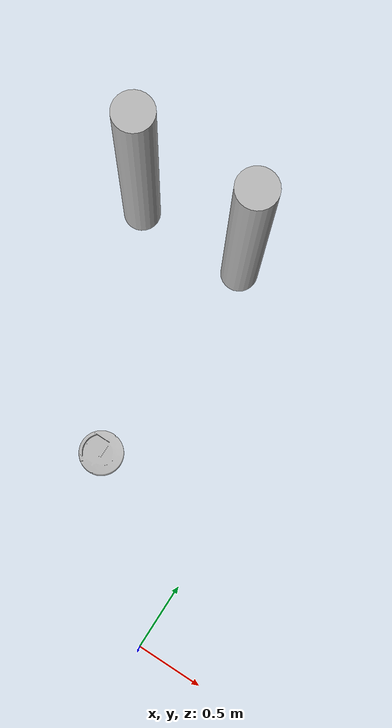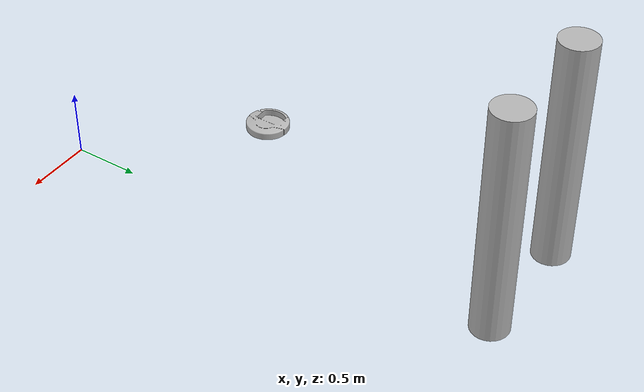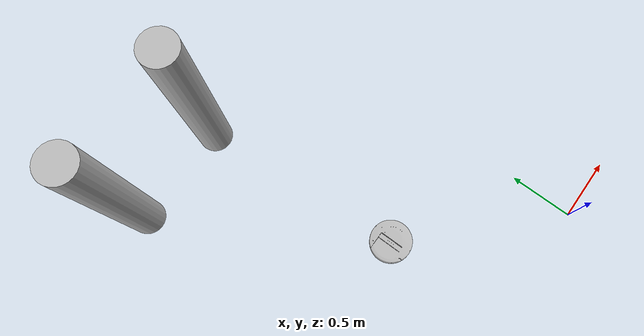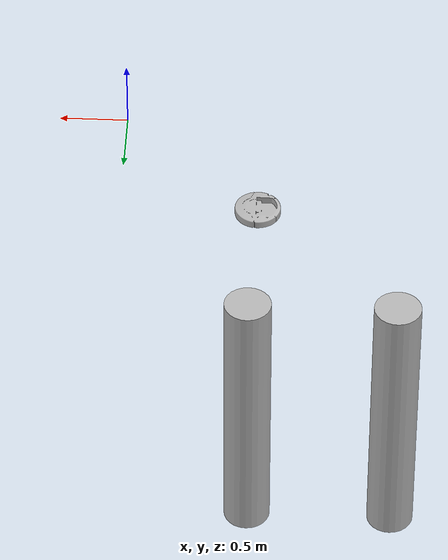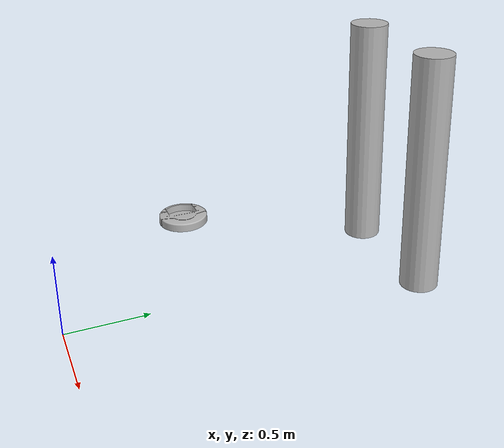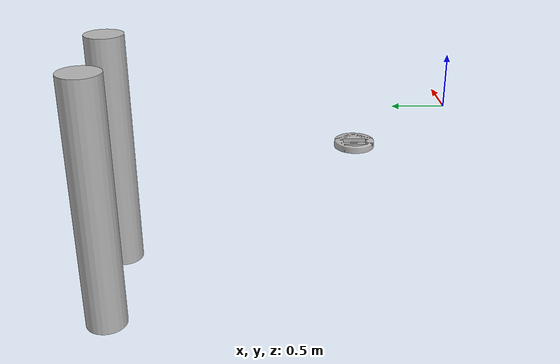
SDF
<sdf version="1.4">
 <world name="default">
  <model name="create_5">
   <link name="base">
    <inertial>
     <pose>0.001453 -0.000453 0.029787 0 -0 0</pose>
     <inertia>
      <ixx>0.05864</ixx>
      <ixy>0.000124</ixy>
      <ixz>0.000615</ixz>
      <iyy>0.058786</iyy>
      <iyz>1.4e-05</iyz>
      <izz>1.53244</izz>
     </inertia>
     <mass>2.234</mass>
    </inertial>
    <collision name="base_collision">
     <pose>0 0 0.0478 0 -0 0</pose>
     <geometry><cylinder><radius>0.016495</radius><length>0.061163</length></cylinder></geometry>
    </collision>
    <visual name="base_visual">
     <pose>0 0 0.0478 0 -0 0</pose>
     <geometry><mesh><uri>model://create/meshes/create_body.dae</uri></mesh></geometry>
    </visual>
    <collision name="front_wheel_collision">
     <pose>0.13 0 0.017 -2.8814e-12 1.5707 1.5707</pose>
     <geometry><sphere><radius>0.018</radius></sphere></geometry>
     <surface>
      <friction><ode><mu>0</mu><mu2>0</mu2><fdir1>0 0 0</fdir1><slip1>0</slip1><slip2>0</slip2></ode></friction>
     </surface>
    </collision>
    <visual name="front_wheel_visual">
     <pose>0.13 0 0.017 -2.8814e-12 1.5707 1.5707</pose>
     <geometry><sphere><radius>0.009</radius></sphere></geometry>
    </visual>
    <collision name="rear_wheel_collision">
     <pose>-0.13 0 0.017 -2.8814e-12 1.5707 1.5707</pose>
     <geometry><sphere><radius>0.015</radius></sphere></geometry>
     <surface>
      <friction><ode><mu>0</mu><mu2>0</mu2><fdir1>0 0 0</fdir1><slip1>0</slip1><slip2>0</slip2></ode></friction>
     </surface>
    </collision>
    <visual name="rear_wheel_visual">
     <pose>-0.13 0 0.017 -2.8814e-12 1.5707 1.5707</pose>
     <geometry><sphere><radius>0.0075</radius></sphere></geometry>
    </visual>
    <sensor name="left_cliff_sensor" type="ray">
     <pose>0.07 0.14 0.027 0 1.57079 0</pose>
     <ray>
      <scan>
       <horizontal>
        <samples>1</samples>
        <resolution>1</resolution>
        <min_angle>0</min_angle>
        <max_angle>0</max_angle>
       </horizontal>
      </scan>
      <range><min>0.01</min><max>0.04</max><resolution>0.1</resolution></range>
     </ray>
    </sensor>
    <sensor name="leftfront_cliff_sensor" type="ray">
     <pose>0.15 0.04 0.027 0 1.57079 0</pose>
     <ray>
      <scan>
       <horizontal>
        <samples>1</samples>
        <resolution>1</resolution>
        <min_angle>0</min_angle>
        <max_angle>0</max_angle>
       </horizontal>
      </scan>
      <range><min>0.01</min><max>0.04</max><resolution>0.1</resolution></range>
     </ray>
    </sensor>
    <sensor name="right_cliff_sensor" type="ray">
     <pose>0.07 -0.14 0.027 0 1.57079 0</pose>
     <ray>
      <scan>
       <horizontal>
        <samples>1</samples>
        <resolution>1</resolution>
        <min_angle>0</min_angle>
        <max_angle>0</max_angle>
       </horizontal>
      </scan>
      <range><min>0.01</min><max>0.04</max><resolution>0.1</resolution></range>
     </ray>
    </sensor>
    <sensor name="rightfront_cliff_sensor" type="ray">
     <pose>0.15 -0.04 0.027 0 1.57079 0</pose>
     <ray>
      <scan>
       <horizontal>
        <samples>1</samples>
        <resolution>1</resolution>
        <min_angle>0</min_angle>
        <max_angle>0</max_angle>
       </horizontal>
      </scan>
      <range><min>0.01</min><max>0.04</max><resolution>0.1</resolution></range>
     </ray>
    </sensor>
    <sensor name="wall_sensor" type="ray">
     <pose>0.09 -0.12 0.059 0 0 -1</pose>
     <ray>
      <scan>
       <horizontal>
        <samples>1</samples>
        <resolution>1</resolution>
        <min_angle>0</min_angle>
        <max_angle>0</max_angle>
       </horizontal>
      </scan>
      <range><min>0.016</min><max>0.04</max><resolution>0.1</resolution></range>
     </ray>
    </sensor>
    <velocity_decay><linear>0</linear><angular>0</angular></velocity_decay>
   </link>
   <link name="left_wheel">
    <pose>0 0.13 0.032 0 -0 0</pose>
    <inertial>
     <inertia><ixx>0.001</ixx><ixy>0</ixy><ixz>0</ixz><iyy>0.001</iyy><iyz>0</iyz><izz>0.001</izz></inertia>
     <mass>0.01</mass>
    </inertial>
    <collision name="collision">
     <pose>0 0 0 -2.8814e-12 1.5707 1.5707</pose>
     <geometry><cylinder><radius>0.033</radius><length>0.023</length></cylinder></geometry>
     <surface>
      <friction><ode><mu>10</mu><mu2>10</mu2><fdir1>0 0 0</fdir1><slip1>0</slip1><slip2>0</slip2></ode></friction>
     </surface>
    </collision>
    <visual name="visual">
     <pose>0 0 0 -2.8814e-12 1.5707 1.5707</pose>
     <geometry><cylinder><radius>0.033</radius><length>0.023</length></cylinder></geometry>
    </visual>
    <velocity_decay><linear>0</linear><angular>0</angular></velocity_decay>
   </link>
   <link name="right_wheel">
    <pose>0 -0.13 0.032 0 -0 0</pose>
    <inertial>
     <inertia><ixx>0.001</ixx><ixy>0</ixy><ixz>0</ixz><iyy>0.001</iyy><iyz>0</iyz><izz>0.001</izz></inertia>
     <mass>0.01</mass>
    </inertial>
    <collision name="collision">
     <pose>0 0 0 -2.8814e-12 1.5707 1.5707</pose>
     <geometry><cylinder><radius>0.033</radius><length>0.023</length></cylinder></geometry>
     <surface>
      <friction><ode><mu>10</mu><mu2>10</mu2><fdir1>0 0 0</fdir1><slip1>0</slip1><slip2>0</slip2></ode></friction>
     </surface>
    </collision>
    <visual name="visual">
     <pose>0 0 0 -2.8814e-12 1.5707 1.5707</pose>
     <geometry><cylinder><radius>0.033</radius><length>0.023</length></cylinder></geometry>
    </visual>
    <velocity_decay><linear>0</linear><angular>0</angular></velocity_decay>
   </link>
   <joint name="left_wheel" type="revolute">
    <parent>base</parent>
    <child>left_wheel</child>
    <axis><xyz>0 1 0</xyz><limit><lower>-1e+16</lower><upper>1e+16</upper></limit></axis>
   </joint>
   <joint name="right_wheel" type="revolute">
    <parent>base</parent>
    <child>right_wheel</child>
    <axis><xyz>0 1 0</xyz><limit><lower>-1e+16</lower><upper>1e+16</upper></limit></axis>
   </joint>
   <pose>-1 1 0 0 -0 0</pose>
   <static>0</static>
  </model>
  <model name="iarc_obstacle_robot">
   <link name="base">
    <inertial>
     <mass>5</mass>
     <inertia><ixx>1</ixx><ixy>0</ixy><ixz>0</ixz><iyy>1</iyy><iyz>0</iyz><izz>1</izz></inertia>
    </inertial>
    <collision name="collision">
     <geometry><cylinder><radius>0.16</radius><length>2</length></cylinder></geometry>
    </collision>
    <visual name="visual">
     <geometry><cylinder><radius>0.16</radius><length>2</length></cylinder></geometry>
    </visual>
    <velocity_decay><linear>0</linear><angular>0</angular></velocity_decay>
   </link>
   <pose>-1 3 0 0 -0 0</pose>
   <static>0</static>
  </model>
  <model name="iarc_obstacle_robot_2">
   <link name="base">
    <inertial>
     <mass>5</mass>
     <inertia><ixx>1</ixx><ixy>0</ixy><ixz>0</ixz><iyy>1</iyy><iyz>0</iyz><izz>1</izz></inertia>
    </inertial>
    <collision name="collision">
     <geometry><cylinder><radius>0.16</radius><length>2</length></cylinder></geometry>
    </collision>
    <visual name="visual">
     <geometry><cylinder><radius>0.16</radius><length>2</length></cylinder></geometry>
    </visual>
    <velocity_decay><linear>0</linear><angular>0</angular></velocity_decay>
   </link>
   <pose>-2 3 0 0 -0 0</pose>
   <static>0</static>
  </model>
 </world>
</sdf>
